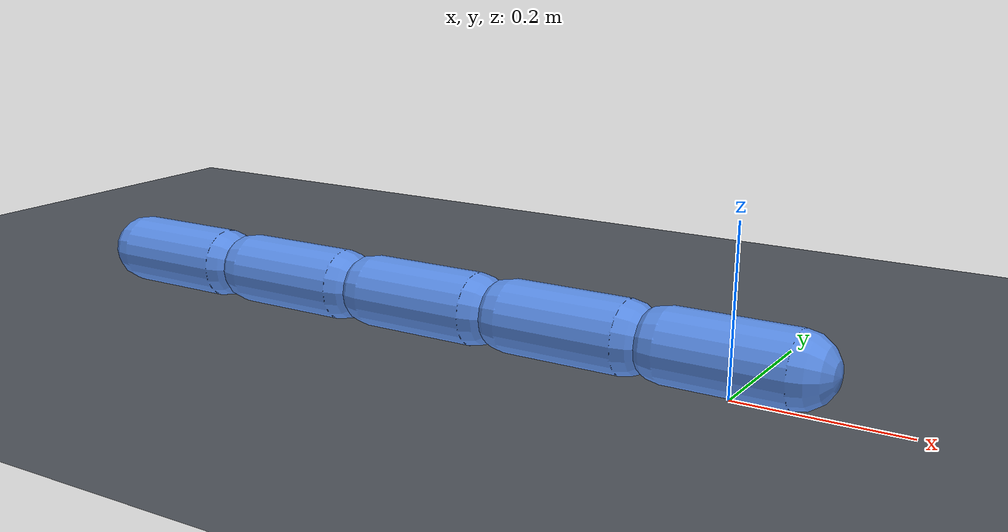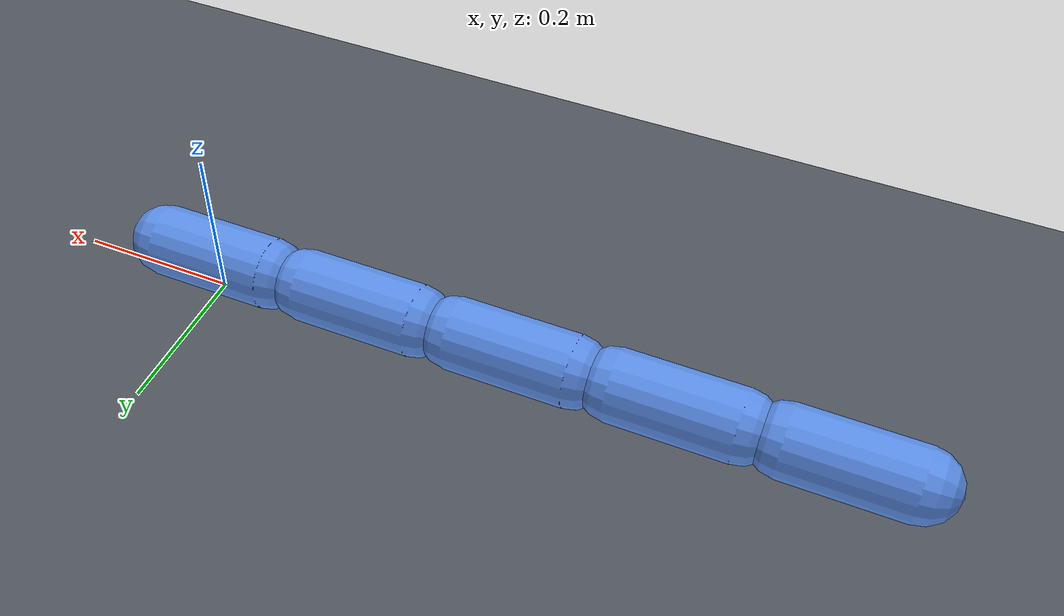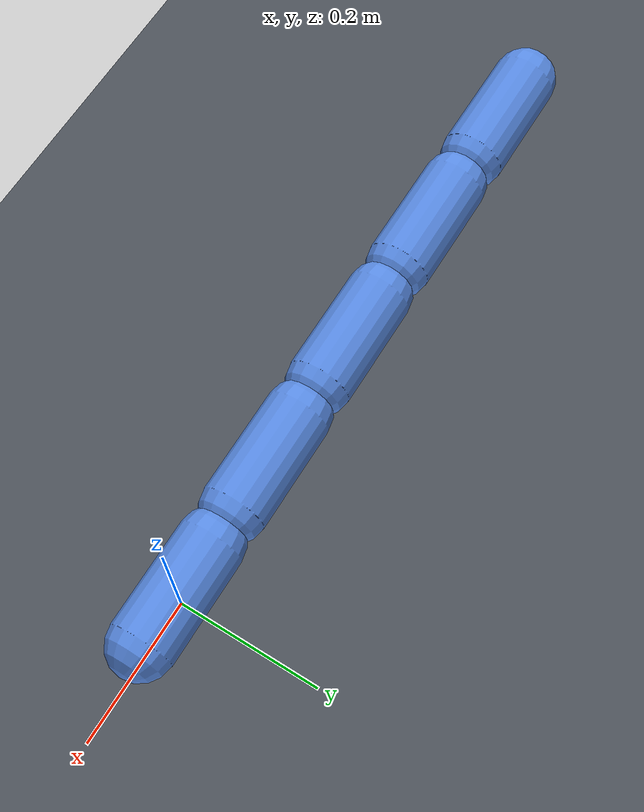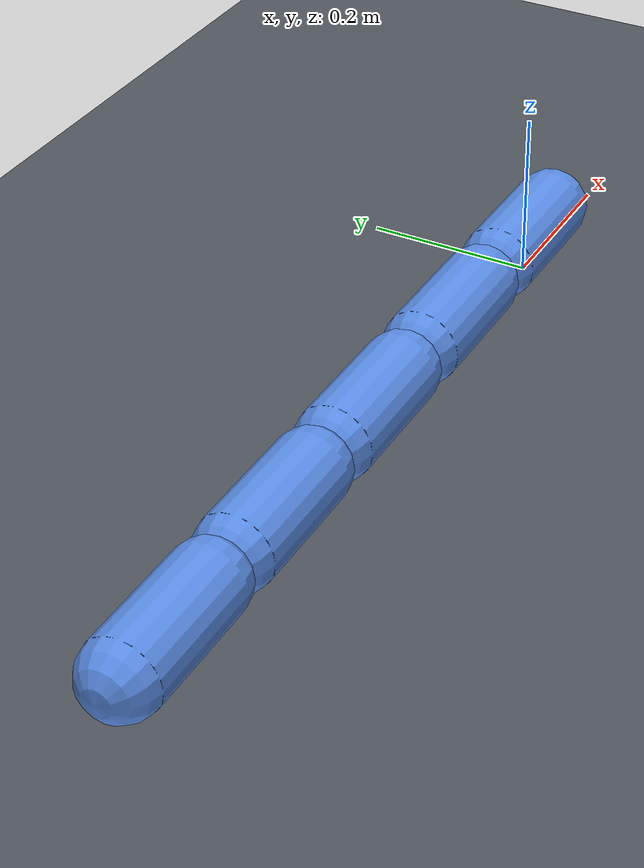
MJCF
<?xml version="1.0" ?>
<mujoco model="worm5">
  <compiler angle="radian" autolimits="true"/>
  <option timestep="0.005" gravity="0 0 -9.81" integrator="implicitfast" solver="Newton" iterations="10" ls_iterations="8" cone="pyramidal"/>
  <default>
    <geom condim="3" friction="0.9 0.005 0.0001" solref="0.01 1" solimp="0.9 0.95 0.001"/>
    <joint type="hinge" limited="true" range="-0.785398 0.785398" damping="2.0" armature="0.01"/>
    <position kp="30.0" ctrlrange="-0.785398 0.785398" forcerange="-6.0 6.0"/>
  </default>
  <worldbody>
    <geom name="floor" type="plane" size="0 0 1" friction="0.9 0.005 0.0001" rgba="0.3 0.32 0.35 1"/>
    <body name="seg0" pos="0 0 0.0500">
      <freejoint name="root"/>
      <geom name="seg0" type="capsule" fromto="-0.075 0 0 0.075 0 0" size="0.045" mass="1.335962" rgba="0.35 0.55 0.9 1"/>
      <body name="link0" pos="-0.1 0 0">
        <inertial pos="0 0 0" mass="0.1" diaginertia="0.0002 0.0002 0.0002"/>
        <joint name="j0_pitch" axis="0 1 0"/>
        <body name="seg1" pos="-0.1 0 0">
          <joint name="j0_yaw" axis="0 0 1" pos="0.1 0 0"/>
          <geom name="seg1" type="capsule" fromto="-0.075 0 0 0.075 0 0" size="0.045" mass="1.335962" rgba="0.35 0.55 0.9 1"/>
          <body name="link1" pos="-0.1 0 0">
            <inertial pos="0 0 0" mass="0.1" diaginertia="0.0002 0.0002 0.0002"/>
            <joint name="j1_pitch" axis="0 1 0"/>
            <body name="seg2" pos="-0.1 0 0">
              <joint name="j1_yaw" axis="0 0 1" pos="0.1 0 0"/>
              <geom name="seg2" type="capsule" fromto="-0.075 0 0 0.075 0 0" size="0.045" mass="1.335962" rgba="0.35 0.55 0.9 1"/>
              <body name="link2" pos="-0.1 0 0">
                <inertial pos="0 0 0" mass="0.1" diaginertia="0.0002 0.0002 0.0002"/>
                <joint name="j2_pitch" axis="0 1 0"/>
                <body name="seg3" pos="-0.1 0 0">
                  <joint name="j2_yaw" axis="0 0 1" pos="0.1 0 0"/>
                  <geom name="seg3" type="capsule" fromto="-0.075 0 0 0.075 0 0" size="0.045" mass="1.335962" rgba="0.35 0.55 0.9 1"/>
                  <body name="link3" pos="-0.1 0 0">
                    <inertial pos="0 0 0" mass="0.1" diaginertia="0.0002 0.0002 0.0002"/>
                    <joint name="j3_pitch" axis="0 1 0"/>
                    <body name="seg4" pos="-0.1 0 0">
                      <joint name="j3_yaw" axis="0 0 1" pos="0.1 0 0"/>
                      <geom name="seg4" type="capsule" fromto="-0.075 0 0 0.075 0 0" size="0.045" mass="1.335962" rgba="0.35 0.55 0.9 1"/>
                    </body>
                  </body>
                </body>
              </body>
            </body>
          </body>
        </body>
      </body>
    </body>
  </worldbody>
  <contact>
    <exclude body1="seg0" body2="seg1"/>
    <exclude body1="seg1" body2="seg2"/>
    <exclude body1="seg2" body2="seg3"/>
    <exclude body1="seg3" body2="seg4"/>
  </contact>
  <actuator>
    <position name="j0_pitch" joint="j0_pitch"/>
    <position name="j0_yaw" joint="j0_yaw"/>
    <position name="j1_pitch" joint="j1_pitch"/>
    <position name="j1_yaw" joint="j1_yaw"/>
    <position name="j2_pitch" joint="j2_pitch"/>
    <position name="j2_yaw" joint="j2_yaw"/>
    <position name="j3_pitch" joint="j3_pitch"/>
    <position name="j3_yaw" joint="j3_yaw"/>
  </actuator>
</mujoco>
